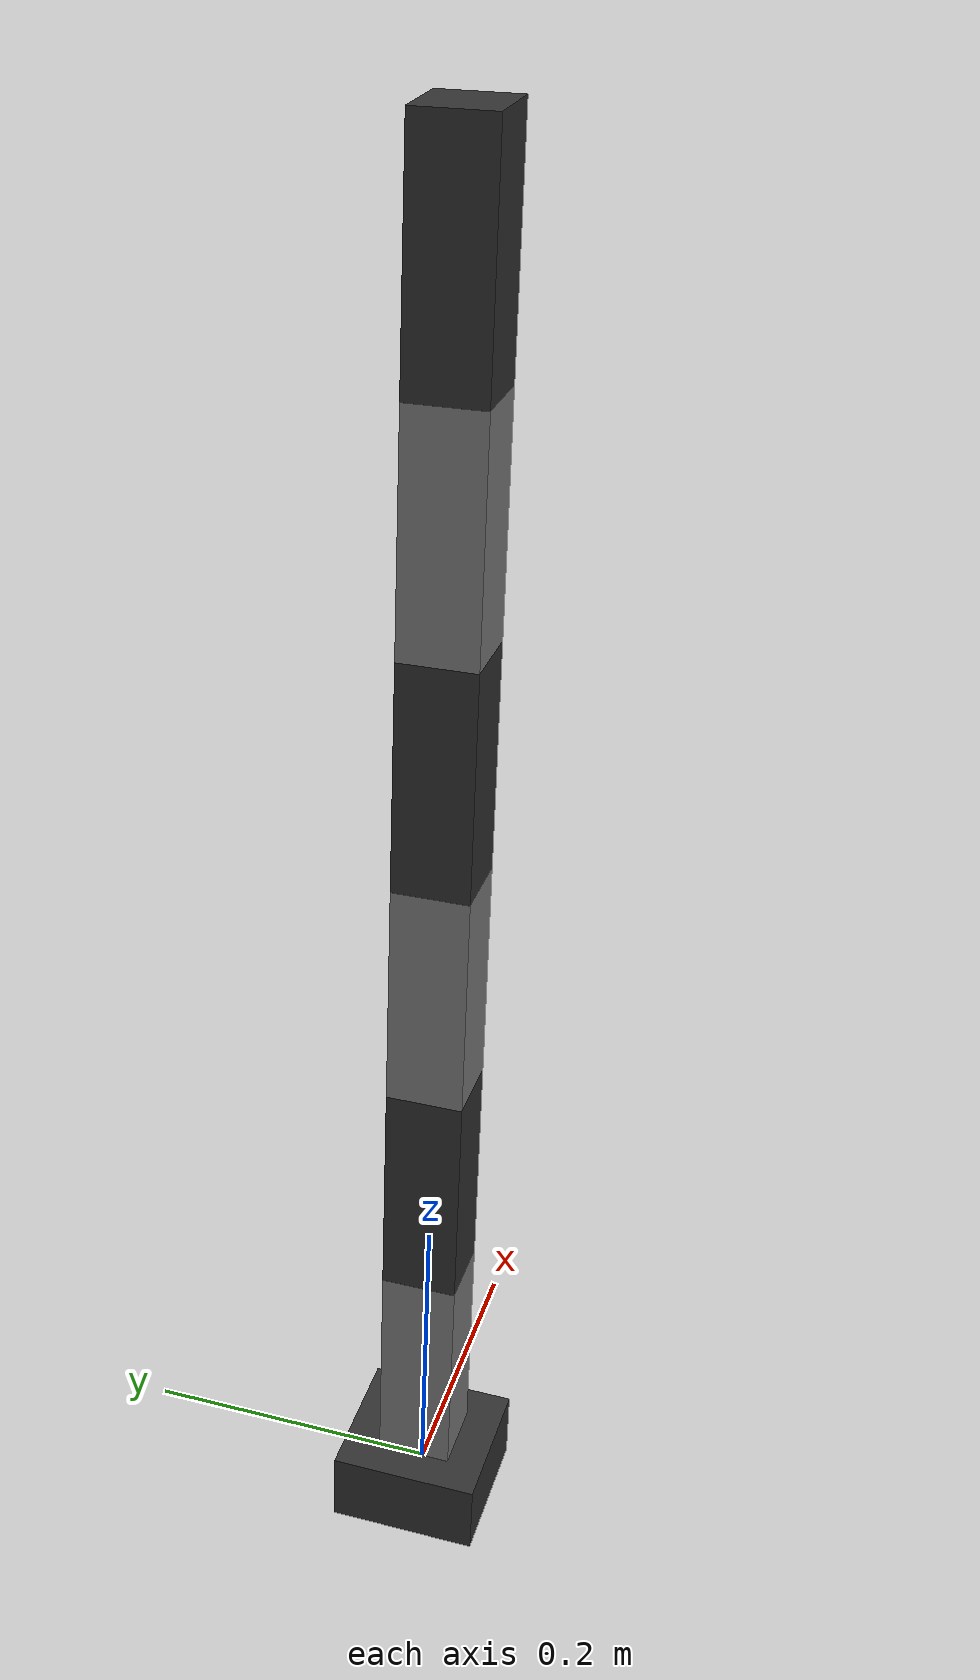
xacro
<?xml version="1.0"?>
<robot name="minimal_manipulator" xmlns:xacro="http://www.ros.org/wiki/xacro">

  <xacro:property name="base_link_x" value="0.1"/>
  <xacro:property name="base_link_y" value="0.1"/>
  <xacro:property name="base_link_z" value="0.05"/>
  <xacro:property name="link_x" value="0.05"/>
  <xacro:property name="link_y" value="0.05"/>
  <xacro:property name="link_z" value="0.15"/>
  <xacro:property name="limit_lower" value="-2.5"/>
  <xacro:property name="limit_upper" value="2.5"/>
  <xacro:property name="limit_effort" value="10.0"/>
  <xacro:property name="limit_velocity" value="1.0"/>

  <material name="gray">
    <color rgba="0.5 0.5 0.5 1.0"/>
  </material>
  <material name="black">
    <color rgba="0.2 0.2 0.2 1.0"/>
  </material>

  <link name="world"/>
  <link name="base_link">
    <visual>
      <geometry>
        <box size="${base_link_x} ${base_link_y} ${base_link_z}"/>
      </geometry>
      <material name="black"/>
    </visual>
    <collision>
      <geometry>
        <box size="${base_link_x} ${base_link_y} ${base_link_z}"/>
      </geometry>
    </collision>
    <inertial>
      <mass value="1.0"/>
      <origin xyz="0 0 0"/>
      <inertia ixx="1e-3" ixy="0" ixz="0" iyy="1e-3" iyz="0" izz="1e-3"/>
    </inertial>
  </link>

  <joint name="base_link_to_world_joint" type="fixed">
    <origin xyz="0 0 0" rpy="0 0 0"/>
    <parent link="world"/>
    <child link="base_link"/>
  </joint>

  <link name="link_1">
    <visual>
      <origin xyz="0 0 ${link_z/2}"/>
      <geometry>
        <box size="${link_x} ${link_y} ${link_z}"/>
      </geometry>
      <material name="gray"/>
    </visual>
    <collision>
      <origin xyz="0 0 ${link_z/2}"/>
      <geometry>
        <box size="${link_x} ${link_y} ${link_z}"/>
      </geometry>
    </collision>
    <inertial>
      <mass value="1.0"/>
      <origin xyz="0 0 0"/>
      <inertia ixx="1e-3" ixy="0" ixz="0" iyy="1e-3" iyz="0" izz="1e-3"/>
    </inertial>
  </link>

  <joint name="link_1_to_base_link_joint" type="revolute">
    <origin xyz="0 0 ${base_link_z/2}" rpy="0 0 0"/>
    <parent link="base_link"/>
    <child link="link_1"/>
    <axis xyz="0 0 1"/>
    <limit lower="${limit_lower}" upper="${limit_upper}" effort="${limit_effort}" velocity="${limit_velocity}"/>
  </joint>

  <link name="link_2">
    <visual>
      <origin xyz="0 0 ${link_z/2}"/>
      <geometry>
        <box size="${link_x} ${link_y} ${link_z}"/>
      </geometry>
      <material name="black"/>
    </visual>
    <collision>
      <origin xyz="0 0 ${link_z/2}"/>
      <geometry>
        <box size="${link_x} ${link_y} ${link_z}"/>
      </geometry>
    </collision>
    <inertial>
      <mass value="1.0"/>
      <origin xyz="0 0 0"/>
      <inertia ixx="1e-3" ixy="0" ixz="0" iyy="1e-3" iyz="0" izz="1e-3"/>
    </inertial>
  </link>

  <joint name="link_2_to_link_1_joint" type="revolute">
    <origin xyz="0 0 ${link_z}" rpy="0 0 0"/>
    <parent link="link_1"/>
    <child link="link_2"/>
    <axis xyz="0 1 0"/>
    <limit lower="${limit_lower}" upper="${limit_upper}" effort="${limit_effort}" velocity="${limit_velocity}"/>
  </joint>

  <link name="link_3">
    <visual>
      <origin xyz="0 0 ${link_z/2}"/>
      <geometry>
        <box size="${link_x} ${link_y} ${link_z}"/>
      </geometry>
      <material name="gray"/>
    </visual>
    <collision>
      <origin xyz="0 0 ${link_z/2}"/>
      <geometry>
        <box size="${link_x} ${link_y} ${link_z}"/>
      </geometry>
    </collision>
    <inertial>
      <mass value="1.0"/>
      <origin xyz="0 0 0"/>
      <inertia ixx="1e-3" ixy="0" ixz="0" iyy="1e-3" iyz="0" izz="1e-3"/>
    </inertial>
  </link>

  <joint name="link_3_to_link_2_joint" type="revolute">
    <origin xyz="0 0 ${link_z}" rpy="0 0 0"/>
    <parent link="link_2"/>
    <child link="link_3"/>
    <axis xyz="0 1 0"/>
    <limit lower="${limit_lower}" upper="${limit_upper}" effort="${limit_effort}" velocity="${limit_velocity}"/>
  </joint>

  <link name="link_4">
    <visual>
      <origin xyz="0 0 ${link_z/2}"/>
      <geometry>
        <box size="${link_x} ${link_y} ${link_z}"/>
      </geometry>
      <material name="black"/>
    </visual>
    <collision>
      <origin xyz="0 0 ${link_z/2}"/>
      <geometry>
        <box size="${link_x} ${link_y} ${link_z}"/>
      </geometry>
    </collision>
    <inertial>
      <mass value="1.0"/>
      <origin xyz="0 0 0"/>
      <inertia ixx="1e-3" ixy="0" ixz="0" iyy="1e-3" iyz="0" izz="1e-3"/>
    </inertial>
  </link>

  <joint name="link_4_to_link_3_joint" type="revolute">
    <origin xyz="0 0 ${link_z}" rpy="0 0 0"/>
    <parent link="link_3"/>
    <child link="link_4"/>
    <axis xyz="0 0 1"/>
    <limit lower="${limit_lower}" upper="${limit_upper}" effort="${limit_effort}" velocity="${limit_velocity}"/>
  </joint>

  <link name="link_5">
    <visual>
      <origin xyz="0 0 ${link_z/2}"/>
      <geometry>
        <box size="${link_x} ${link_y} ${link_z}"/>
      </geometry>
      <material name="gray"/>
    </visual>
    <collision>
      <origin xyz="0 0 ${link_z/2}"/>
      <geometry>
        <box size="${link_x} ${link_y} ${link_z}"/>
      </geometry>
    </collision>
    <inertial>
      <mass value="1.0"/>
      <origin xyz="0 0 0"/>
      <inertia ixx="1e-3" ixy="0" ixz="0" iyy="1e-3" iyz="0" izz="1e-3"/>
    </inertial>
  </link>

  <joint name="link_5_to_link_4_joint" type="revolute">
    <origin xyz="0 0 ${link_z}" rpy="0 0 0"/>
    <parent link="link_4"/>
    <child link="link_5"/>
    <axis xyz="0 1 0"/>
    <limit lower="${limit_lower}" upper="${limit_upper}" effort="${limit_effort}" velocity="${limit_velocity}"/>
  </joint>

  <link name="link_6">
    <visual>
      <origin xyz="0 0 ${link_z/2}"/>
      <geometry>
        <box size="${link_x} ${link_y} ${link_z}"/>
      </geometry>
      <material name="black"/>
    </visual>
    <collision>
      <origin xyz="0 0 ${link_z/2}"/>
      <geometry>
        <box size="${link_x} ${link_y} ${link_z}"/>
      </geometry>
    </collision>
    <inertial>
      <mass value="1.0"/>
      <origin xyz="0 0 0"/>
      <inertia ixx="1e-3" ixy="0" ixz="0" iyy="1e-3" iyz="0" izz="1e-3"/>
    </inertial>
  </link>

  <joint name="link_6_to_link_5_joint" type="revolute">
    <origin xyz="0 0 ${link_z}" rpy="0 0 0"/>
    <parent link="link_5"/>
    <child link="link_6"/>
    <axis xyz="0 0 1"/>
    <limit lower="${limit_lower}" upper="${limit_upper}" effort="${limit_effort}" velocity="${limit_velocity}"/>
  </joint>

</robot>
